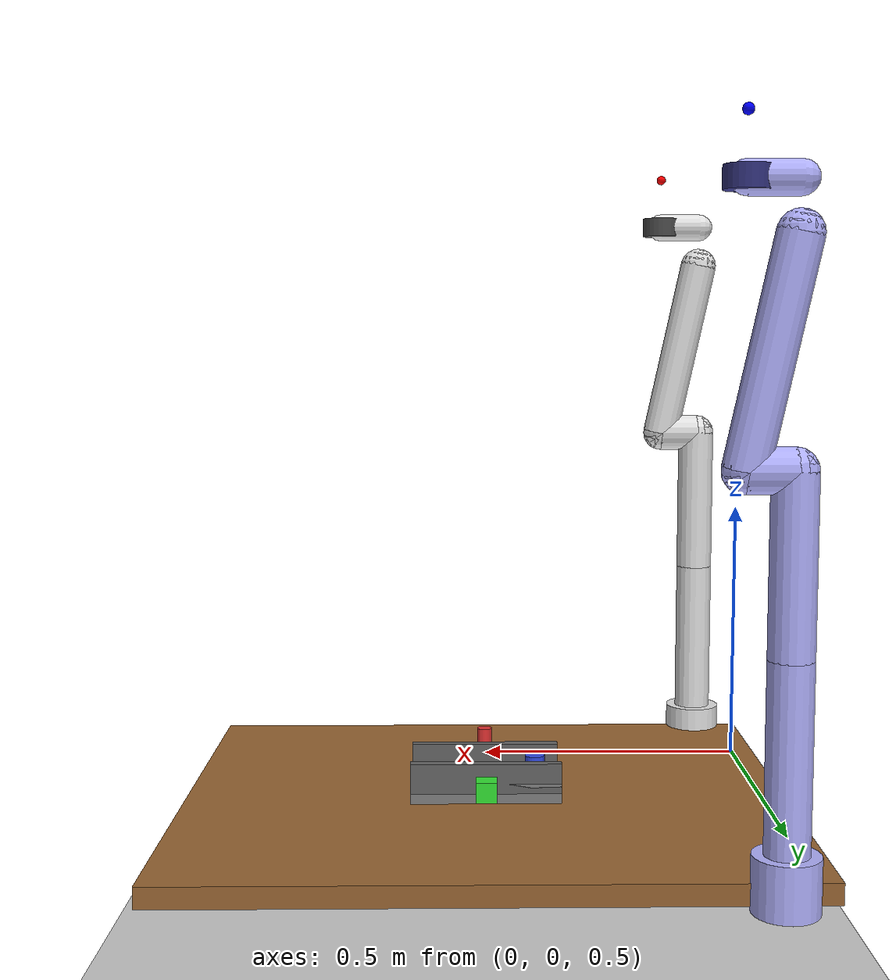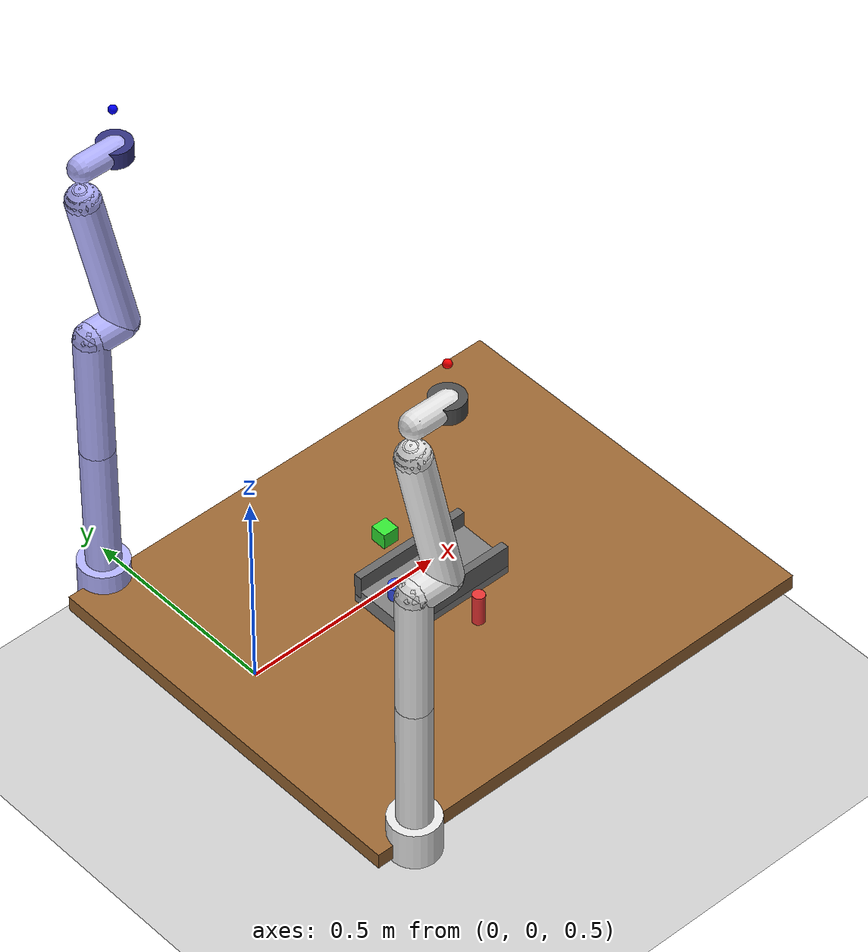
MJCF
<!--
  S2 Line Changeover scene for PSL-Bench.
  Two Panda arms (a_ and b_ prefixed) + shared fixture + target objects.
  Frame convention: z-up, SI units (metres, radians, kg).
-->
<mujoco model="s2_line_changeover">
  <option timestep="0.002" gravity="0 0 -9.81"/>
  <compiler angle="radian"/>

  <default>
    <joint damping="1.0" armature="0.1"/>
    <geom condim="4" friction="1 0.5 0.01"/>
  </default>

  <worldbody>
    <geom name="floor" type="plane" size="3 3 0.1" rgba="0.8 0.8 0.8 1"/>

    <!-- Table -->
    <body name="table" pos="0.5 0 0.4">
      <geom name="table_top" type="box" size="0.6 0.5 0.02" rgba="0.6 0.4 0.2 1" mass="10"/>
    </body>

    <!-- Shared fixture (box between the two arms) -->
    <body name="shared_fixture" pos="0.5 0 0.44">
      <geom name="fixture_base" type="box" size="0.15 0.08 0.02" rgba="0.5 0.5 0.5 1" mass="2.0"/>
      <geom name="fixture_clamp_l" type="box" pos="0 0.07 0.03" size="0.15 0.01 0.03" rgba="0.4 0.4 0.4 1" mass="0.5"/>
      <geom name="fixture_clamp_r" type="box" pos="0 -0.07 0.03" size="0.15 0.01 0.03" rgba="0.4 0.4 0.4 1" mass="0.5"/>
    </body>

    <!-- Panda A (left) -->
    <body name="panda_a_link0" pos="0 -0.5 0.42">
      <geom name="a_link0_geom" type="cylinder" size="0.06 0.05" rgba="0.9 0.9 0.9 1" mass="2.0"/>
      <body name="panda_a_link1" pos="0 0 0.05">
        <joint name="a_joint_0" type="hinge" axis="0 0 1" range="-2.8973 2.8973" damping="10"/>
        <geom name="a_link1_geom" type="capsule" fromto="0 0 0 0 0 0.333" size="0.04" rgba="0.9 0.9 0.9 1" mass="2.0"/>
        <body name="panda_a_link2" pos="0 0 0.333">
          <joint name="a_joint_1" type="hinge" axis="0 1 0" range="-1.7628 1.7628" damping="10"/>
          <geom name="a_link2_geom" type="capsule" fromto="0 0 0 0 0 0.316" size="0.04" rgba="0.9 0.9 0.9 1" mass="2.0"/>
          <body name="panda_a_link3" pos="0 0 0.316">
            <joint name="a_joint_2" type="hinge" axis="0 0 1" range="-2.8973 2.8973" damping="10"/>
            <geom name="a_link3_geom" type="capsule" fromto="0 0 0 0.0825 0 0" size="0.04" rgba="0.9 0.9 0.9 1" mass="2.0"/>
            <body name="panda_a_link4" pos="0.0825 0 0">
              <joint name="a_joint_3" type="hinge" axis="0 -1 0" range="-3.0718 -0.0698" damping="10"/>
              <geom name="a_link4_geom" type="capsule" fromto="0 0 0 -0.0825 0 0.384" size="0.04" rgba="0.9 0.9 0.9 1" mass="2.0"/>
              <body name="panda_a_link5" pos="-0.0825 0 0.384">
                <joint name="a_joint_4" type="hinge" axis="0 0 1" range="-2.8973 2.8973" damping="10"/>
                <geom name="a_link5_geom" type="sphere" size="0.04" rgba="0.9 0.9 0.9 1" mass="1.0"/>
                <body name="panda_a_link6" pos="0 0 0.088">
                  <joint name="a_joint_5" type="hinge" axis="0 1 0" range="-0.0175 3.7525" damping="5"/>
                  <geom name="a_link6_geom" type="capsule" fromto="0 0 0 0.088 0 0" size="0.03" rgba="0.9 0.9 0.9 1" mass="1.0"/>
                  <body name="panda_a_link7" pos="0.088 0 0">
                    <joint name="a_joint_6" type="hinge" axis="0 0 1" range="-2.8973 2.8973" damping="2"/>
                    <geom name="a_link7_geom" type="cylinder" size="0.04 0.02" rgba="0.3 0.3 0.3 1" mass="0.5"/>
                    <site name="a_ee_site" pos="0 0 0.107" size="0.01" rgba="1 0 0 1"/>
                  </body>
                </body>
              </body>
            </body>
          </body>
        </body>
      </body>
    </body>

    <!-- Panda B (right) -->
    <body name="panda_b_link0" pos="0 0.5 0.42">
      <geom name="b_link0_geom" type="cylinder" size="0.06 0.05" rgba="0.7 0.7 1.0 1" mass="2.0"/>
      <body name="panda_b_link1" pos="0 0 0.05">
        <joint name="b_joint_0" type="hinge" axis="0 0 1" range="-2.8973 2.8973" damping="10"/>
        <geom name="b_link1_geom" type="capsule" fromto="0 0 0 0 0 0.333" size="0.04" rgba="0.7 0.7 1.0 1" mass="2.0"/>
        <body name="panda_b_link2" pos="0 0 0.333">
          <joint name="b_joint_1" type="hinge" axis="0 1 0" range="-1.7628 1.7628" damping="10"/>
          <geom name="b_link2_geom" type="capsule" fromto="0 0 0 0 0 0.316" size="0.04" rgba="0.7 0.7 1.0 1" mass="2.0"/>
          <body name="panda_b_link3" pos="0 0 0.316">
            <joint name="b_joint_2" type="hinge" axis="0 0 1" range="-2.8973 2.8973" damping="10"/>
            <geom name="b_link3_geom" type="capsule" fromto="0 0 0 0.0825 0 0" size="0.04" rgba="0.7 0.7 1.0 1" mass="2.0"/>
            <body name="panda_b_link4" pos="0.0825 0 0">
              <joint name="b_joint_3" type="hinge" axis="0 -1 0" range="-3.0718 -0.0698" damping="10"/>
              <geom name="b_link4_geom" type="capsule" fromto="0 0 0 -0.0825 0 0.384" size="0.04" rgba="0.7 0.7 1.0 1" mass="2.0"/>
              <body name="panda_b_link5" pos="-0.0825 0 0.384">
                <joint name="b_joint_4" type="hinge" axis="0 0 1" range="-2.8973 2.8973" damping="10"/>
                <geom name="b_link5_geom" type="sphere" size="0.04" rgba="0.7 0.7 1.0 1" mass="1.0"/>
                <body name="panda_b_link6" pos="0 0 0.088">
                  <joint name="b_joint_5" type="hinge" axis="0 1 0" range="-0.0175 3.7525" damping="5"/>
                  <geom name="b_link6_geom" type="capsule" fromto="0 0 0 0.088 0 0" size="0.03" rgba="0.7 0.7 1.0 1" mass="1.0"/>
                  <body name="panda_b_link7" pos="0.088 0 0">
                    <joint name="b_joint_6" type="hinge" axis="0 0 1" range="-2.8973 2.8973" damping="2"/>
                    <geom name="b_link7_geom" type="cylinder" size="0.04 0.02" rgba="0.2 0.2 0.5 1" mass="0.5"/>
                    <site name="b_ee_site" pos="0 0 0.107" size="0.01" rgba="0 0 1 1"/>
                  </body>
                </body>
              </body>
            </body>
          </body>
        </body>
      </body>
    </body>

    <!-- Target object 1: red peg -->
    <body name="target_peg" pos="0.5 -0.15 0.47">
      <freejoint name="peg_free"/>
      <geom name="peg_geom" type="cylinder" size="0.015 0.04" rgba="0.9 0.2 0.2 1" mass="0.05"/>
    </body>

    <!-- Target object 2: green block -->
    <body name="target_block" pos="0.5 0.15 0.47">
      <freejoint name="block_free"/>
      <geom name="block_geom" type="box" size="0.02 0.02 0.02" rgba="0.2 0.9 0.2 1" mass="0.05"/>
    </body>

    <!-- Target object 3: blue cylinder -->
    <body name="target_cylinder" pos="0.4 0 0.47">
      <freejoint name="cyl_free"/>
      <geom name="cyl_geom" type="cylinder" size="0.02 0.025" rgba="0.2 0.3 0.9 1" mass="0.05"/>
    </body>
  </worldbody>

  <actuator>
    <!-- Panda A actuators -->
    <position name="act_a_joint_0" joint="a_joint_0" kp="1000"/>
    <position name="act_a_joint_1" joint="a_joint_1" kp="1000"/>
    <position name="act_a_joint_2" joint="a_joint_2" kp="1000"/>
    <position name="act_a_joint_3" joint="a_joint_3" kp="1000"/>
    <position name="act_a_joint_4" joint="a_joint_4" kp="1000"/>
    <position name="act_a_joint_5" joint="a_joint_5" kp="1000"/>
    <position name="act_a_joint_6" joint="a_joint_6" kp="1000"/>
    <!-- Panda B actuators -->
    <position name="act_b_joint_0" joint="b_joint_0" kp="1000"/>
    <position name="act_b_joint_1" joint="b_joint_1" kp="1000"/>
    <position name="act_b_joint_2" joint="b_joint_2" kp="1000"/>
    <position name="act_b_joint_3" joint="b_joint_3" kp="1000"/>
    <position name="act_b_joint_4" joint="b_joint_4" kp="1000"/>
    <position name="act_b_joint_5" joint="b_joint_5" kp="1000"/>
    <position name="act_b_joint_6" joint="b_joint_6" kp="1000"/>
  </actuator>

  <sensor>
    <!-- Panda A sensors -->
    <jointpos name="a_jpos_0" joint="a_joint_0"/>
    <jointpos name="a_jpos_1" joint="a_joint_1"/>
    <jointpos name="a_jpos_2" joint="a_joint_2"/>
    <jointpos name="a_jpos_3" joint="a_joint_3"/>
    <jointpos name="a_jpos_4" joint="a_joint_4"/>
    <jointpos name="a_jpos_5" joint="a_joint_5"/>
    <jointpos name="a_jpos_6" joint="a_joint_6"/>
    <jointvel name="a_jvel_0" joint="a_joint_0"/>
    <jointvel name="a_jvel_1" joint="a_joint_1"/>
    <jointvel name="a_jvel_2" joint="a_joint_2"/>
    <jointvel name="a_jvel_3" joint="a_joint_3"/>
    <jointvel name="a_jvel_4" joint="a_joint_4"/>
    <jointvel name="a_jvel_5" joint="a_joint_5"/>
    <jointvel name="a_jvel_6" joint="a_joint_6"/>
    <framepos name="a_ee_pos" objtype="site" objname="a_ee_site"/>
    <framequat name="a_ee_quat" objtype="site" objname="a_ee_site"/>
    <!-- Panda B sensors -->
    <jointpos name="b_jpos_0" joint="b_joint_0"/>
    <jointpos name="b_jpos_1" joint="b_joint_1"/>
    <jointpos name="b_jpos_2" joint="b_joint_2"/>
    <jointpos name="b_jpos_3" joint="b_joint_3"/>
    <jointpos name="b_jpos_4" joint="b_joint_4"/>
    <jointpos name="b_jpos_5" joint="b_joint_5"/>
    <jointpos name="b_jpos_6" joint="b_joint_6"/>
    <jointvel name="b_jvel_0" joint="b_joint_0"/>
    <jointvel name="b_jvel_1" joint="b_joint_1"/>
    <jointvel name="b_jvel_2" joint="b_joint_2"/>
    <jointvel name="b_jvel_3" joint="b_joint_3"/>
    <jointvel name="b_jvel_4" joint="b_joint_4"/>
    <jointvel name="b_jvel_5" joint="b_joint_5"/>
    <jointvel name="b_jvel_6" joint="b_joint_6"/>
    <framepos name="b_ee_pos" objtype="site" objname="b_ee_site"/>
    <framequat name="b_ee_quat" objtype="site" objname="b_ee_site"/>
  </sensor>
</mujoco>
